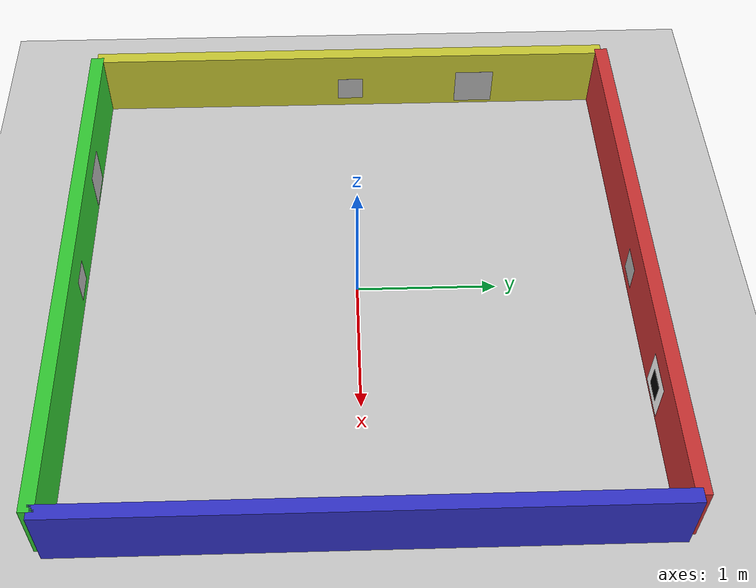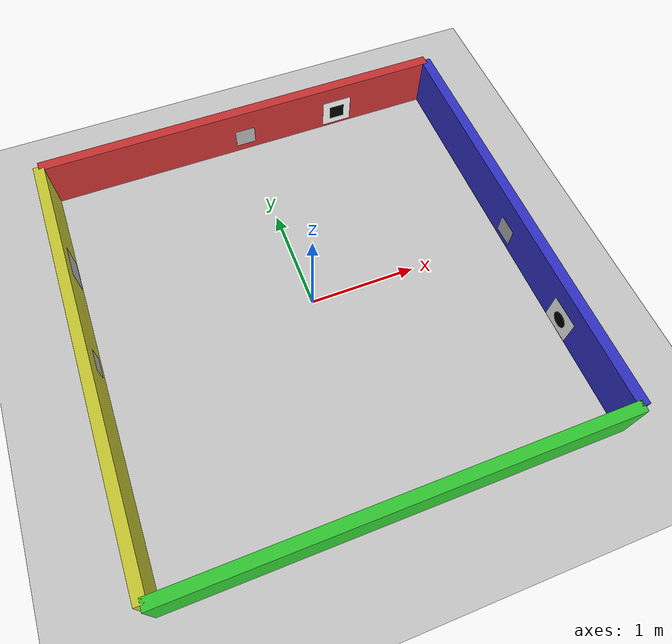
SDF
<?xml version="1.0" ?>
<sdf version='1.7'>
  <world name='aruco_test_world'>

    <!-- Lighting -->
    <light name='sun' type='directional'>
      <cast_shadows>1</cast_shadows>
      <pose>0 0 10 0 -0 0</pose>
      <diffuse>0.8 0.8 0.8 1</diffuse>
      <specular>0.2 0.2 0.2 1</specular>
      <attenuation>
        <range>1000</range>
        <constant>0.9</constant>
        <linear>0.01</linear>
        <quadratic>0.001</quadratic>
      </attenuation>
      <direction>-0.5 0.1 -0.9</direction>
    </light>

    <!-- Ground Plane -->
    <model name='ground_plane'>
      <static>1</static>
      <link name='link'>
        <collision name='collision'>
          <geometry>
            <plane>
              <normal>0 0 1</normal>
              <size>100 100</size>
            </plane>
          </geometry>
        </collision>
        <visual name='visual'>
          <cast_shadows>0</cast_shadows>
          <geometry>
            <plane>
              <normal>0 0 1</normal>
              <size>100 100</size>
            </plane>
          </geometry>
          <material>
            <script>
              <uri>file://media/materials/scripts/gazebo.material</uri>
              <name>Gazebo/Grey</name>
            </script>
          </material>
        </visual>
      </link>
    </model>

    <!-- Physics -->
    <gravity>0 0 -9.8</gravity>
    <physics type='ode'>
      <max_step_size>0.001</max_step_size>
      <real_time_factor>1</real_time_factor>
      <real_time_update_rate>500</real_time_update_rate>
    </physics>

    <!-- Scene -->
    <scene>
      <ambient>1.0 1.0 1.0 1</ambient>
      <background>1.0 1.0 1.0 1</background>
      <shadows>false</shadows>
    </scene>

    <!-- Simple Room - 4m x 4m -->

    <!-- North Wall - RED (where ArUco marker is) -->
    <model name='north_wall'>
      <static>1</static>
      <pose>0 2 0.25 0 0 0</pose>
      <link name='link'>
        <collision name='collision'>
          <geometry>
            <box>
              <size>4 0.1 0.5</size>
            </box>
          </geometry>
        </collision>
        <visual name='visual'>
          <geometry>
            <box>
              <size>4 0.1 0.5</size>
            </box>
          </geometry>
          <material>
            <ambient>0.8 0.2 0.2 1</ambient>
            <diffuse>0.8 0.2 0.2 1</diffuse>
          </material>
        </visual>
      </link>
    </model>

    <!-- South Wall - GREEN -->
    <model name='south_wall'>
      <static>1</static>
      <pose>0 -2 0.25 0 0 0</pose>
      <link name='link'>
        <collision name='collision'>
          <geometry>
            <box>
              <size>4 0.1 0.5</size>
            </box>
          </geometry>
        </collision>
        <visual name='visual'>
          <geometry>
            <box>
              <size>4 0.1 0.5</size>
            </box>
          </geometry>
          <material>
            <ambient>0.2 0.8 0.2 1</ambient>
            <diffuse>0.2 0.8 0.2 1</diffuse>
          </material>
        </visual>
      </link>
    </model>

    <!-- East Wall - BLUE -->
    <model name='east_wall'>
      <static>1</static>
      <pose>2 0 0.25 0 0 1.5708</pose>
      <link name='link'>
        <collision name='collision'>
          <geometry>
            <box>
              <size>4 0.1 0.5</size>
            </box>
          </geometry>
        </collision>
        <visual name='visual'>
          <geometry>
            <box>
              <size>4 0.1 0.5</size>
            </box>
          </geometry>
          <material>
            <ambient>0.2 0.2 0.8 1</ambient>
            <diffuse>0.2 0.2 0.8 1</diffuse>
          </material>
        </visual>
      </link>
    </model>

    <!-- West Wall - YELLOW -->
    <model name='west_wall'>
      <static>1</static>
      <pose>-2 0 0.25 0 0 1.5708</pose>
      <link name='link'>
        <collision name='collision'>
          <geometry>
            <box>
              <size>4 0.1 0.5</size>
            </box>
          </geometry>
        </collision>
        <visual name='visual'>
          <geometry>
            <box>
              <size>4 0.1 0.5</size>
            </box>
          </geometry>
          <material>
            <ambient>0.8 0.8 0.2 1</ambient>
            <diffuse>0.8 0.8 0.2 1</diffuse>
          </material>
        </visual>
      </link>
    </model>

    <!-- ======== NORTH WALL (RED) ======== -->

    <!-- Aruco Marker 0 - North Wall Center -->
    <model name='aruco_marker_0'>
      <static>true</static>
      <pose>0 1.95 0.173278 0 0 0</pose>
      <link name='link'>
        <visual name='aruco_visual'>
          <geometry>
            <box>
              <size>0.2 0.001 0.2</size>
            </box>
          </geometry>
          <material>
            <script>
              <uri>file://materials/scripts</uri>
              <uri>file://materials/textures</uri>
              <name>aruco_0</name>
            </script>
          </material>
        </visual>
      </link>
    </model>

    <!-- Shape 1: SQUARE - North Wall (1m to the right of aruco_marker_0) -->
    <!-- White canvas background -->
    <model name='shape_square_canvas'>
      <static>true</static>
      <pose>1.0 1.95 0.173278 0 0 0</pose>
      <link name='link'>
        <visual name='canvas'>
          <geometry>
            <box>
              <size>0.3 0.001 0.3</size>
            </box>
          </geometry>
          <material>
            <ambient>1 1 1 1</ambient>
            <diffuse>1 1 1 1</diffuse>
          </material>
        </visual>
      </link>
    </model>
    <!-- Black square on canvas -->
    <model name='shape_square'>
      <static>true</static>
      <pose>1.0 1.945 0.173278 0 0 0</pose>
      <link name='link'>
        <visual name='square'>
          <geometry>
            <box>
              <size>0.15 0.002 0.15</size>
            </box>
          </geometry>
          <material>
            <ambient>0 0 0 1</ambient>
            <diffuse>0 0 0 1</diffuse>
          </material>
        </visual>
      </link>
    </model>

    <!-- ======== EAST WALL (BLUE) ======== -->

    <!-- Aruco Marker 1 - East Wall Center -->
    <model name='aruco_marker_1'>
      <static>true</static>
      <pose>1.938740 -0.011936 0.173278 0 0 1.584782</pose>
      <link name='link'>
        <visual name='aruco_visual'>
          <geometry>
            <box>
              <size>0.2 0.001 0.2</size>
            </box>
          </geometry>
          <material>
            <script>
              <uri>file://materials/scripts</uri>
              <uri>file://materials/textures</uri>
              <name>aruco_1</name>
            </script>
          </material>
        </visual>
      </link>
    </model>

    <!-- Shape 2: CIRCLE - East Wall (1m to the right) -->
    <!-- White canvas background -->
    <model name='shape_circle_canvas'>
      <static>true</static>
      <pose>1.938740 -1.011936 0.173278 0 0 1.584782</pose>
      <link name='link'>
        <visual name='canvas'>
          <geometry>
            <box>
              <size>0.3 0.001 0.3</size>
            </box>
          </geometry>
          <material>
            <ambient>1 1 1 1</ambient>
            <diffuse>1 1 1 1</diffuse>
          </material>
        </visual>
      </link>
    </model>
    <!-- Black circle (thin cylinder) on canvas -->
    <model name='shape_circle'>
      <static>true</static>
      <pose>1.933740 -1.011936 0.173278 0 1.5708 0</pose>
      <link name='link'>
        <visual name='circle'>
          <geometry>
            <cylinder>
              <radius>0.075</radius>
              <length>0.002</length>
            </cylinder>
          </geometry>
          <material>
            <ambient>0 0 0 1</ambient>
            <diffuse>0 0 0 1</diffuse>
          </material>
        </visual>
      </link>
    </model>

    <!-- ======== SOUTH WALL (GREEN) ======== -->

    <!-- Aruco Marker 2 - South Wall Center -->
    <model name='aruco_marker_2'>
      <static>true</static>
      <pose>0 -1.95 0.173278 0 0 3.141593</pose>
      <link name='link'>
        <visual name='aruco_visual'>
          <geometry>
            <box>
              <size>0.2 0.001 0.2</size>
            </box>
          </geometry>
          <material>
            <script>
              <uri>file://materials/scripts</uri>
              <uri>file://materials/textures</uri>
              <name>aruco_2</name>
            </script>
          </material>
        </visual>
      </link>
    </model>

    <!-- Shape 3: TRIANGLE - South Wall (1m to the right) -->
    <!-- Triangle as textured box (like ArUco markers) -->
    <model name='shape_triangle'>
      <static>true</static>
      <pose>-1.0 -1.95 0.173278 0 0 3.141593</pose>
      <link name='link'>
        <visual name='triangle_visual'>
          <geometry>
            <box>
              <size>0.3 0.001 0.3</size>
            </box>
          </geometry>
          <material>
            <script>
              <uri>file://materials/scripts</uri>
              <uri>file://materials/textures</uri>
              <name>triangle_shape</name>
            </script>
          </material>
        </visual>
      </link>
    </model>

    <!-- ======== WEST WALL (YELLOW) ======== -->

    <!-- Aruco Marker 3 - West Wall Center -->
    <model name='aruco_marker_3'>
      <static>true</static>
      <pose>-1.95 0 0.173278 0 0 -1.570796</pose>
      <link name='link'>
        <visual name='aruco_visual'>
          <geometry>
            <box>
              <size>0.2 0.001 0.2</size>
            </box>
          </geometry>
          <material>
            <script>
              <uri>file://materials/scripts</uri>
              <uri>file://materials/textures</uri>
              <name>aruco_3</name>
            </script>
          </material>
        </visual>
      </link>
    </model>

    <!-- Shape 4: PENTAGON - West Wall (1m to the right) -->
    <!-- Pentagon as textured box (like ArUco markers) -->
    <model name='shape_pentagon'>
      <static>true</static>
      <pose>-1.95 1.0 0.173278 0 0 -1.570796</pose>
      <link name='link'>
        <visual name='pentagon_visual'>
          <geometry>
            <box>
              <size>0.3 0.001 0.3</size>
            </box>
          </geometry>
          <material>
            <script>
              <uri>file://materials/scripts</uri>
              <uri>file://materials/textures</uri>
              <name>pentagon_shape</name>
            </script>
          </material>
        </visual>
      </link>
    </model>

  </world>
</sdf>
